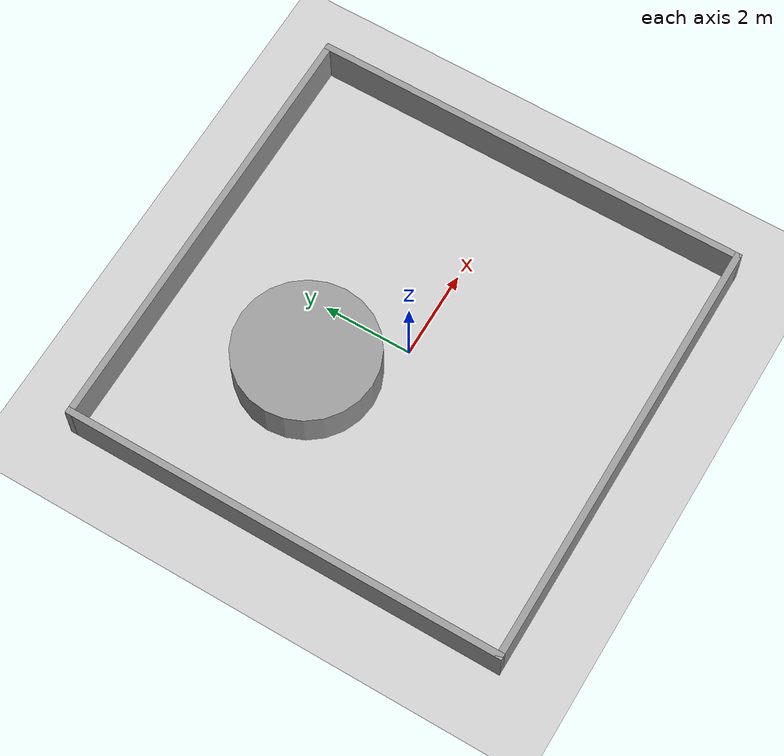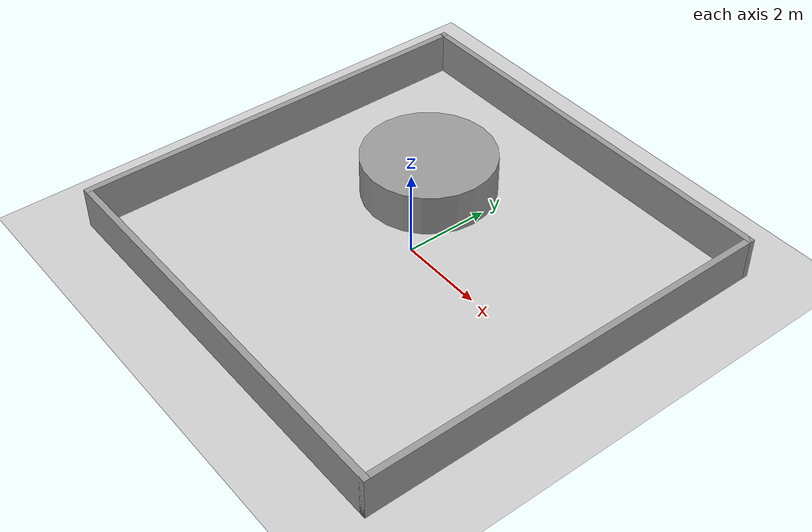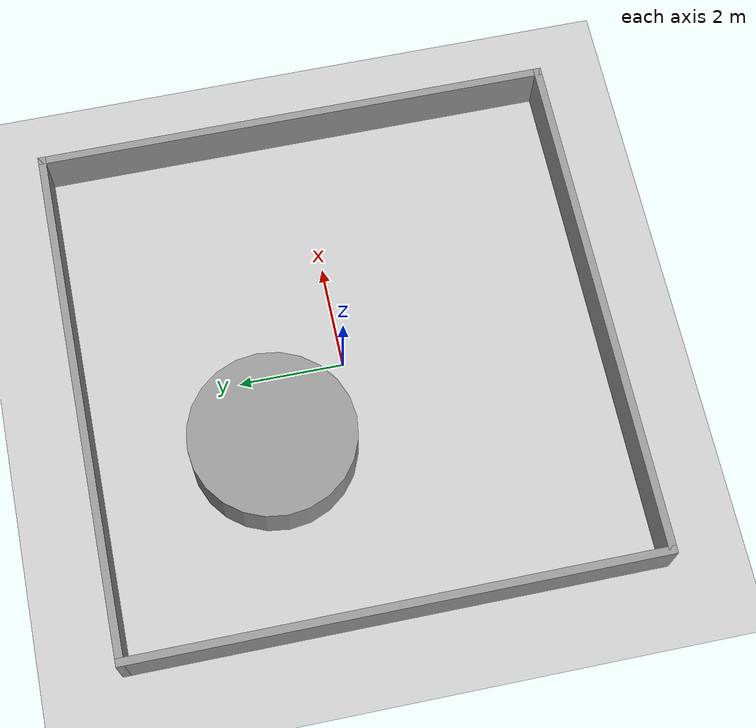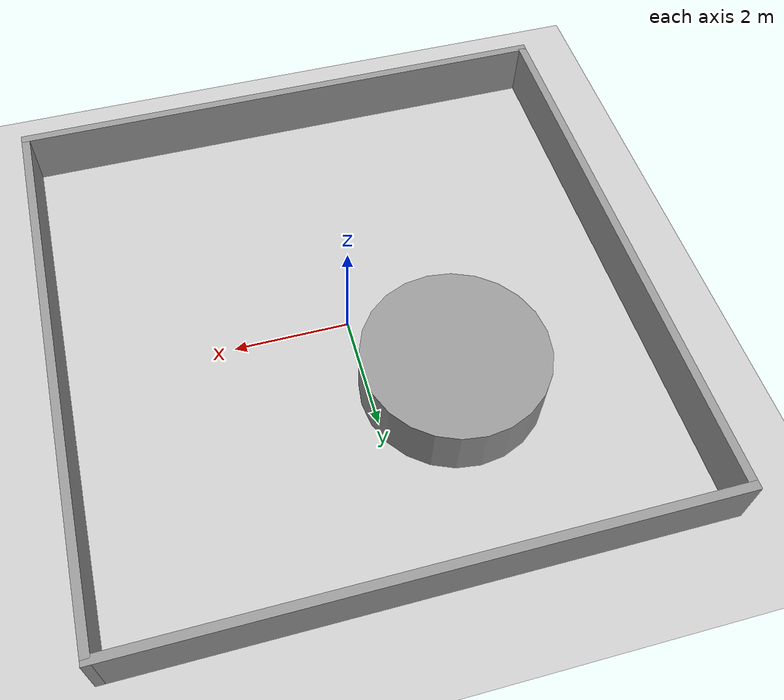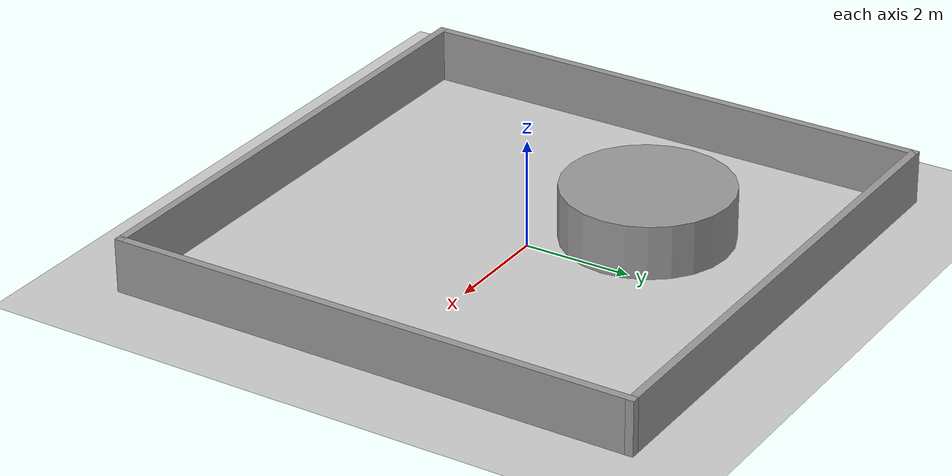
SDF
<sdf version="1.7">
 <world name="default">
  <light name="sun" type="directional">
   <pose>0 0 10 0 -0 0</pose>
   <diffuse>0.8 0.8 0.8 1</diffuse>
   <specular>0.2 0.2 0.2 1</specular>
   <attenuation>
    <range>1000</range>
    <constant>0.9</constant>
    <linear>0.01</linear>
    <quadratic>0.001</quadratic>
   </attenuation>
   <direction>-0.5 0.1 -0.9</direction>
   <spot><inner_angle>0</inner_angle><outer_angle>0</outer_angle><falloff>0</falloff></spot>
  </light>
  <model name="ground_plane">
   <static>1</static>
   <link name="link">
    <collision name="collision">
     <geometry><plane><normal>0 0 1</normal><size>100 100</size></plane></geometry>
     <surface><friction><ode><mu>100</mu><mu2>50</mu2></ode></friction></surface>
    </collision>
    <visual name="visual">
     <cast_shadows>0</cast_shadows>
     <geometry><plane><normal>0 0 1</normal><size>100 100</size></plane></geometry>
     <material>
      <script><uri>file://media/materials/scripts/gazebo.material</uri><name>Gazebo/Grey</name></script>
     </material>
    </visual>
   </link>
  </model>
  <model name="EmptyRoom">
   <frame name="EmptyRoom::__model__" attached_to="EmptyRoom::Wall_1">
    <pose relative_to="__model__">0 0 0 0 -0 0</pose>
   </frame>
   <link name="EmptyRoom::Wall_1">
    <collision name="Wall_1_Collision">
     <geometry><box><size>10 0.15 1</size></box></geometry>
     <pose>0 0 0.5 0 -0 0</pose>
    </collision>
    <visual name="Wall_1_Visual">
     <pose>0 0 0.5 0 -0 0</pose>
     <geometry><box><size>10 0.15 1</size></box></geometry>
     <material>
      <script><uri>file://media/materials/scripts/gazebo.material</uri><name>Gazebo/Grey</name></script>
      <ambient>1 1 1 1</ambient>
     </material>
     <meta><layer>0</layer></meta>
    </visual>
    <pose relative_to="EmptyRoom::__model__">-4.925 0 0 0 -0 -1.5708</pose>
   </link>
   <link name="EmptyRoom::Wall_2">
    <collision name="Wall_2_Collision">
     <geometry><box><size>10 0.15 1</size></box></geometry>
     <pose>0 0 0.5 0 -0 0</pose>
    </collision>
    <visual name="Wall_2_Visual">
     <pose>0 0 0.5 0 -0 0</pose>
     <geometry><box><size>10 0.15 1</size></box></geometry>
     <material>
      <script><uri>file://media/materials/scripts/gazebo.material</uri><name>Gazebo/Grey</name></script>
      <ambient>1 1 1 1</ambient>
     </material>
     <meta><layer>0</layer></meta>
    </visual>
    <pose relative_to="EmptyRoom::__model__">-0 -4.925 0 0 -0 0</pose>
   </link>
   <link name="EmptyRoom::Wall_3">
    <collision name="Wall_3_Collision">
     <geometry><box><size>10 0.15 1</size></box></geometry>
     <pose>0 0 0.5 0 -0 0</pose>
    </collision>
    <visual name="Wall_3_Visual">
     <pose>0 0 0.5 0 -0 0</pose>
     <geometry><box><size>10 0.15 1</size></box></geometry>
     <material>
      <script><uri>file://media/materials/scripts/gazebo.material</uri><name>Gazebo/Grey</name></script>
      <ambient>1 1 1 1</ambient>
     </material>
     <meta><layer>0</layer></meta>
    </visual>
    <pose relative_to="EmptyRoom::__model__">4.925 0 0 0 -0 1.5708</pose>
   </link>
   <link name="EmptyRoom::Wall_4">
    <collision name="Wall_4_Collision">
     <geometry><box><size>10 0.15 1</size></box></geometry>
     <pose>0 0 0.5 0 -0 0</pose>
    </collision>
    <visual name="Wall_4_Visual">
     <pose>0 0 0.5 0 -0 0</pose>
     <geometry><box><size>10 0.15 1</size></box></geometry>
     <material>
      <script><uri>file://media/materials/scripts/gazebo.material</uri><name>Gazebo/Grey</name></script>
      <ambient>1 1 1 1</ambient>
     </material>
     <meta><layer>0</layer></meta>
    </visual>
    <pose relative_to="EmptyRoom::__model__">-0 4.925 0 0 -0 3.14159</pose>
   </link>
   <static>1</static>
  </model>
  <gravity>0 0 -9.8</gravity>
  <magnetic_field>6e-06 2.3e-05 -4.2e-05</magnetic_field>
  <atmosphere type="adiabatic"/>
  <physics type="ode">
   <max_step_size>0.001</max_step_size>
   <real_time_factor>1</real_time_factor>
   <real_time_update_rate>1000</real_time_update_rate>
  </physics>
  <scene><ambient>0.4 0.4 0.4 1</ambient><background>0.7 0.7 0.7 1</background><shadows>1</shadows></scene>
  <audio><device>default</device></audio>
  <spherical_coordinates>
   <surface_model>EARTH_WGS84</surface_model>
   <latitude_deg>0</latitude_deg>
   <longitude_deg>0</longitude_deg>
   <elevation>0</elevation>
   <heading_deg>0</heading_deg>
  </spherical_coordinates>
  <model name="unit_cylinder">
   <pose>-1.38599 1.589 0.499996 -3e-06 3e-06 3.2e-05</pose>
   <link name="link">
    <inertial>
     <mass>1</mass>
     <inertia><ixx>0.145833</ixx><ixy>0</ixy><ixz>0</ixz><iyy>0.145833</iyy><iyz>0</iyz><izz>0.125</izz></inertia>
    </inertial>
    <collision name="collision">
     <geometry><cylinder><radius>1.56317</radius><length>1</length></cylinder></geometry>
    </collision>
    <visual name="visual">
     <geometry><cylinder><radius>1.56317</radius><length>1</length></cylinder></geometry>
     <material>
      <script><name>Gazebo/Grey</name><uri>file://media/materials/scripts/gazebo.material</uri></script>
     </material>
    </visual>
   </link>
  </model>
 </world>
</sdf>
